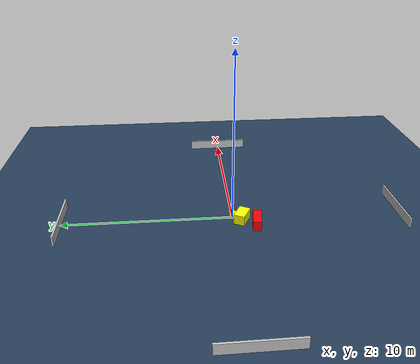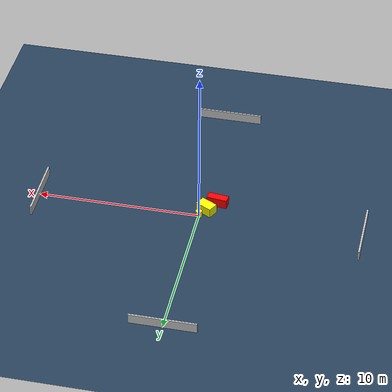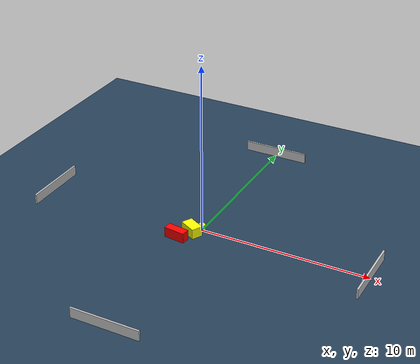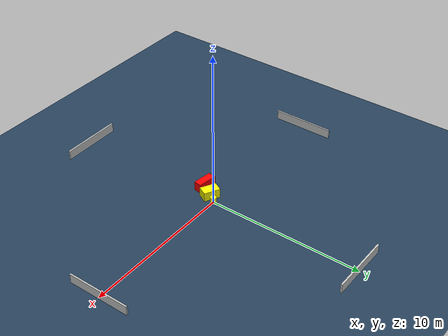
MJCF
<?xml version="1.0" ?>
<mujoco model="generated_environment">
  <option timestep="0.01" integrator="RK4" cone="elliptic"/>
  <default>
    <geom density="1"/>
  </default>
  <asset>
    <texture builtin="gradient" height="3072" name="skybox" rgb1="0.3 0.5 0.7" rgb2="0 0 0" type="skybox" width="512"/>
    <texture builtin="checker" height="300" name="groundplane" rgb1="0.2 0.3 0.4" rgb2="0.1 0.2 0.3" type="2d" width="300"/>
    <material name="groundplane" reflectance="0.2" texrepeat="5 5" texture="groundplane"/>
  </asset>
  <worldbody>
    <light dir="0 0 -1" directional="true" pos="0 0 1.5"/>
    <geom condim="3" friction="0.5 0.005 0.001" material="groundplane" name="floor" pos="0 0 0" size="0 0 0.05" type="plane"/>
    <body name="walls">
      <geom name="wall_1" condim="4" pos="-10.0 0.0 0.3" rgba="0.800000011920929 0.800000011920929 0.800000011920929 1.0" size="0.05 2.0 0.3" type="box"/>
      <geom name="wall_2" condim="4" pos="10.0 0.0 0.3" rgba="0.800000011920929 0.800000011920929 0.800000011920929 1.0" size="0.05 2.0 0.3" type="box"/>
      <geom name="wall_3" condim="4" pos="0.0 -10.0 0.3" rgba="0.800000011920929 0.800000011920929 0.800000011920929 1.0" size="2.0 0.05 0.3" type="box"/>
      <geom name="wall_4" condim="4" pos="0.0 10.0 0.3" rgba="0.800000011920929 0.800000011920929 0.800000011920929 1.0" size="2.0 0.05 0.3" type="box"/>
    </body>
    <body name="robot">
      <joint name="joint_x" type="slide" pos="0 0 0" axis="1 0 0"/>
      <joint name="joint_y" type="slide" pos="0 0 0" axis="0 1 0"/>
      <geom name="robot" type="cylinder" pos="0.0 0.0 0.2" size="0.2 0.2 0.0" mass="5.0" friction="1.0 0.005 0.0001" condim="4" rgba="1.0 1.0 0.0 1.0"/>
    </body>
    <body name="obstacle_1_movable">
      <geom name="obstacle_1_movable" condim="4" pos="-0.3548521881625119 -0.5169134332776306 0.3" euler="0 0 332.342048491844" friction="0.0 0.005 0.001" rgba="1.0 1.0 0.0 1.0" size="0.5302595374181986 0.3319284163362148 0.3" type="box" mass="0.1"/>
      <joint type="free"/>
    </body>
    <body name="obstacle_2_static">
      <geom name="obstacle_2_static" condim="4" pos="-0.8956322880299354 -1.329691777601628 0.3" euler="0 0 352.5768539473913" friction="0.0 0.005 0.001" rgba="1.0 0.0 0.0 1.0" size="0.6324259376923393 0.24845574487757033 0.3" type="box"/>
    </body>
  </worldbody>
  <actuator>
    <motor name="actuator_x" joint="joint_x" gear="1" ctrlrange="-1 1"/>
    <motor name="actuator_y" joint="joint_y" gear="1" ctrlrange="-1 1"/>
  </actuator>
</mujoco>
